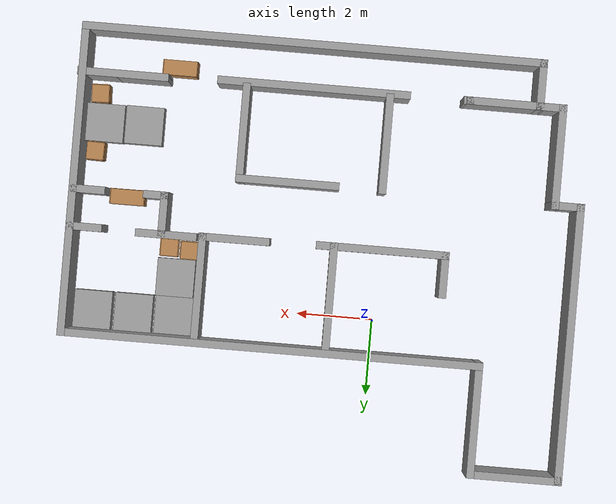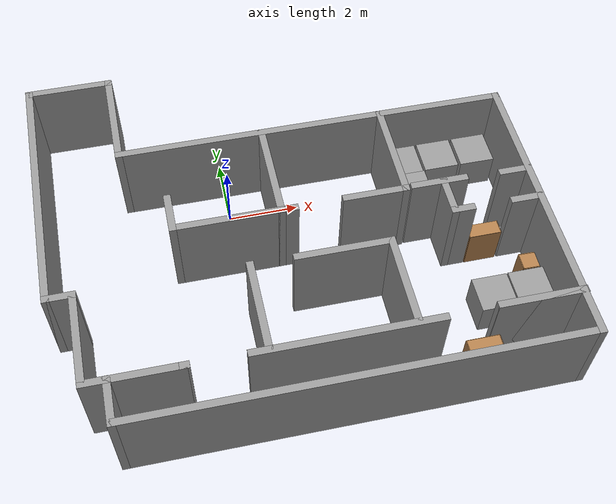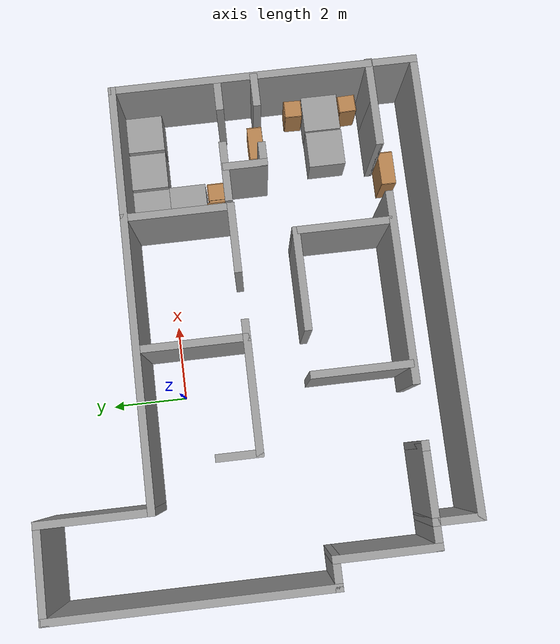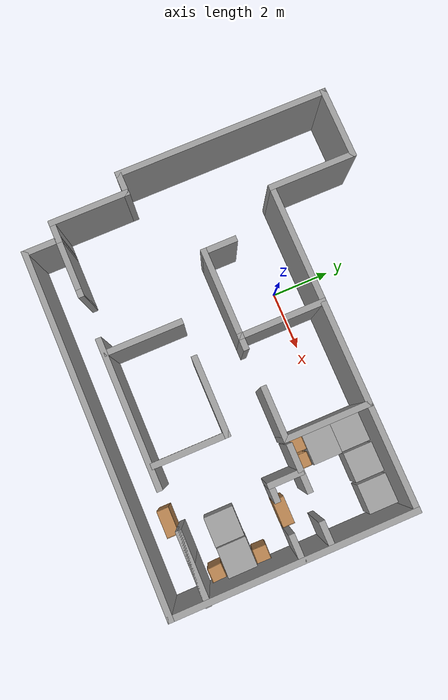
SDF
<sdf version="1.4">
 <world name="default">
  <model name="roy1_0">
   <link name="Wall_14">
    <collision name="Wall_14_Collision">
     <geometry><box><size>7.30611 0.2 2.5</size></box></geometry>
     <pose>0 0 1.25 0 -0 0</pose>
    </collision>
    <visual name="Wall_14_Visual">
     <pose>0 0 1.25 0 -0 0</pose>
     <geometry><box><size>7.30611 0.2 2.5</size></box></geometry>
     <material>
      <script><uri>file://media/materials/scripts/gazebo.material</uri><name>Gazebo/Grey</name></script>
     </material>
    </visual>
    <velocity_decay><linear>0</linear><angular>0</angular></velocity_decay>
    <pose>-11.6774 0.500575 0 0 0 -1.5708</pose>
   </link>
   <link name="Wall_15">
    <collision name="Wall_15_Collision">
     <geometry><box><size>0.869322 0.2 2.5</size></box></geometry>
     <pose>0 0 1.25 0 -0 0</pose>
    </collision>
    <visual name="Wall_15_Visual">
     <pose>0 0 1.25 0 -0 0</pose>
     <geometry><box><size>0.869322 0.2 2.5</size></box></geometry>
     <material>
      <script><uri>file://media/materials/scripts/gazebo.material</uri><name>Gazebo/Grey</name></script>
     </material>
    </visual>
    <velocity_decay><linear>0</linear><angular>0</angular></velocity_decay>
    <pose>-11.3432 -3.05248 0 0 -0 0</pose>
   </link>
   <link name="Wall_16">
    <collision name="Wall_16_Collision">
     <geometry><box><size>2.73287 0.2 2.5</size></box></geometry>
     <pose>0 0 1.25 0 -0 0</pose>
    </collision>
    <visual name="Wall_16_Visual">
     <pose>0 0 1.25 0 -0 0</pose>
     <geometry><box><size>2.73287 0.2 2.5</size></box></geometry>
     <material>
      <script><uri>file://media/materials/scripts/gazebo.material</uri><name>Gazebo/Grey</name></script>
     </material>
    </visual>
    <velocity_decay><linear>0</linear><angular>0</angular></velocity_decay>
    <pose>-11.009 -4.31891 0 0 0 -1.5708</pose>
   </link>
   <link name="Wall_17">
    <collision name="Wall_17_Collision">
     <geometry><box><size>0.798039 0.2 2.5</size></box></geometry>
     <pose>0 0 1.25 0 -0 0</pose>
    </collision>
    <visual name="Wall_17_Visual">
     <pose>0 0 1.25 0 -0 0</pose>
     <geometry><box><size>0.798039 0.2 2.5</size></box></geometry>
     <material>
      <script><uri>file://media/materials/scripts/gazebo.material</uri><name>Gazebo/Grey</name></script>
     </material>
    </visual>
    <velocity_decay><linear>0</linear><angular>0</angular></velocity_decay>
    <pose>-10.71 -5.58535 0 0 -0 0</pose>
   </link>
   <link name="Wall_18">
    <collision name="Wall_18_Collision">
     <geometry><box><size>1.32572 0.2 2.5</size></box></geometry>
     <pose>0 0 1.25 0 -0 0</pose>
    </collision>
    <visual name="Wall_18_Visual">
     <pose>0 0 1.25 0 -0 0</pose>
     <geometry><box><size>1.32572 0.2 2.5</size></box></geometry>
     <material>
      <script><uri>file://media/materials/scripts/gazebo.material</uri><name>Gazebo/Grey</name></script>
     </material>
    </visual>
    <velocity_decay><linear>0</linear><angular>0</angular></velocity_decay>
    <pose>-10.411 -6.14821 0 0 0 -1.5708</pose>
   </link>
   <link name="Wall_19">
    <collision name="Wall_19_Collision">
     <geometry><box><size>12.1261 0.2 2.5</size></box></geometry>
     <pose>0 0 1.25 0 -0 0</pose>
    </collision>
    <visual name="Wall_19_Visual">
     <pose>0 0 1.25 0 -0 0</pose>
     <geometry><box><size>12.1261 0.2 2.5</size></box></geometry>
     <material>
      <script><uri>file://media/materials/scripts/gazebo.material</uri><name>Gazebo/Grey</name></script>
     </material>
    </visual>
    <velocity_decay><linear>0</linear><angular>0</angular></velocity_decay>
    <pose>-4.44816 -6.71107 0 0 -0 0</pose>
   </link>
   <link name="Wall_20">
    <collision name="Wall_20_Collision">
     <geometry><box><size>8.18558 0.2 2.5</size></box></geometry>
     <pose>0 0 1.25 0 -0 0</pose>
    </collision>
    <visual name="Wall_20_Visual">
     <pose>0 0 1.25 0 -0 0</pose>
     <geometry><box><size>8.18558 0.2 2.5</size></box></geometry>
     <material>
      <script><uri>file://media/materials/scripts/gazebo.material</uri><name>Gazebo/Grey</name></script>
     </material>
    </visual>
    <velocity_decay><linear>0</linear><angular>0</angular></velocity_decay>
    <pose>1.51464 -2.71828 0 0 -0 1.5708</pose>
   </link>
   <link name="Wall_21">
    <collision name="Wall_21_Collision">
     <geometry><box><size>11.1059 0.2 2.5</size></box></geometry>
     <pose>0 0 1.25 0 -0 0</pose>
    </collision>
    <visual name="Wall_21_Visual">
     <pose>0 0 1.25 0 -0 0</pose>
     <geometry><box><size>11.1059 0.2 2.5</size></box></geometry>
     <material>
      <script><uri>file://media/materials/scripts/gazebo.material</uri><name>Gazebo/Grey</name></script>
     </material>
    </visual>
    <velocity_decay><linear>0</linear><angular>0</angular></velocity_decay>
    <pose>-3.93807 1.27451 0 0 -0 3.14159</pose>
   </link>
   <link name="Wall_22">
    <collision name="Wall_22_Collision">
     <geometry><box><size>3.0143 0.2 2.5</size></box></geometry>
     <pose>0 0 1.25 0 -0 0</pose>
    </collision>
    <visual name="Wall_22_Visual">
     <pose>0 0 1.25 0 -0 0</pose>
     <geometry><box><size>3.0143 0.2 2.5</size></box></geometry>
     <material>
      <script><uri>file://media/materials/scripts/gazebo.material</uri><name>Gazebo/Grey</name></script>
     </material>
    </visual>
    <velocity_decay><linear>0</linear><angular>0</angular></velocity_decay>
    <pose>-9.39078 2.68166 0 0 -0 1.5708</pose>
   </link>
   <link name="Wall_23">
    <collision name="Wall_23_Collision">
     <geometry><box><size>2.48662 0.2 2.5</size></box></geometry>
     <pose>0 0 1.25 0 -0 0</pose>
    </collision>
    <visual name="Wall_23_Visual">
     <pose>0 0 1.25 0 -0 0</pose>
     <geometry><box><size>2.48662 0.2 2.5</size></box></geometry>
     <material>
      <script><uri>file://media/materials/scripts/gazebo.material</uri><name>Gazebo/Grey</name></script>
     </material>
    </visual>
    <velocity_decay><linear>0</linear><angular>0</angular></velocity_decay>
    <pose>-10.5341 4.08881 0 0 -0 3.14159</pose>
   </link>
   <link name="Wall_24">
    <collision name="Wall_24_Collision">
     <geometry><box><size>0.235179 0.2 2.5</size></box></geometry>
     <pose>0 0 1.25 0 -0 0</pose>
    </collision>
    <visual name="Wall_24_Visual">
     <pose>0 0 1.25 0 -0 0</pose>
     <geometry><box><size>0.235179 0.2 2.5</size></box></geometry>
     <material>
      <script><uri>file://media/materials/scripts/gazebo.material</uri><name>Gazebo/Grey</name></script>
     </material>
    </visual>
    <velocity_decay><linear>0</linear><angular>0</angular></velocity_decay>
    <pose>-11.6774 4.07122 0 0 0 -1.5708</pose>
   </link>
   <link name="Wall_26">
    <collision name="Wall_26_Collision">
     <geometry><box><size>2.98371 0.2 2.5</size></box></geometry>
     <pose>0 0 1.25 0 -0 0</pose>
    </collision>
    <visual name="Wall_26_Visual">
     <pose>0 0 1.25 0 -0 0</pose>
     <geometry><box><size>2.98371 0.2 2.5</size></box></geometry>
     <material>
      <script><uri>file://media/materials/scripts/gazebo.material</uri><name>Gazebo/Grey</name></script>
     </material>
    </visual>
    <velocity_decay><linear>0</linear><angular>0</angular></velocity_decay>
    <pose>-5.37546 -0.128198 0 0 0 -1.5708</pose>
   </link>
   <link name="Wall_27">
    <collision name="Wall_27_Collision">
     <geometry><box><size>3.10607 0.2 2.5</size></box></geometry>
     <pose>0 0 1.25 0 -0 0</pose>
    </collision>
    <visual name="Wall_27_Visual">
     <pose>0 0 1.25 0 -0 0</pose>
     <geometry><box><size>3.10607 0.2 2.5</size></box></geometry>
     <material>
      <script><uri>file://media/materials/scripts/gazebo.material</uri><name>Gazebo/Grey</name></script>
     </material>
    </visual>
    <velocity_decay><linear>0</linear><angular>0</angular></velocity_decay>
    <pose>-6.8285 -1.52005 0 0 -0 3.14159</pose>
   </link>
   <link name="Wall_28">
    <collision name="Wall_28_Collision">
     <geometry><box><size>1.20948 0.2 2.5</size></box></geometry>
     <pose>0 0 1.25 0 -0 0</pose>
    </collision>
    <visual name="Wall_28_Visual">
     <pose>0 0 1.25 0 -0 0</pose>
     <geometry><box><size>1.20948 0.2 2.5</size></box></geometry>
     <material>
      <script><uri>file://media/materials/scripts/gazebo.material</uri><name>Gazebo/Grey</name></script>
     </material>
    </visual>
    <velocity_decay><linear>0</linear><angular>0</angular></velocity_decay>
    <pose>-8.28153 -1.01531 0 0 -0 1.5708</pose>
   </link>
   <link name="Wall_30">
    <collision name="Wall_30_Collision">
     <geometry><box><size>0.505902 0.2 2.5</size></box></geometry>
     <pose>0 0 1.25 0 -0 0</pose>
    </collision>
    <visual name="Wall_30_Visual">
     <pose>0 0 1.25 0 -0 0</pose>
     <geometry><box><size>0.505902 0.2 2.5</size></box></geometry>
     <material>
      <script><uri>file://media/materials/scripts/gazebo.material</uri><name>Gazebo/Grey</name></script>
     </material>
    </visual>
    <velocity_decay><linear>0</linear><angular>0</angular></velocity_decay>
    <pose>-5.16133 -1.52005 0 0 -0 0</pose>
   </link>
   <link name="Wall_32">
    <collision name="Wall_32_Collision">
     <geometry><box><size>2.95329 0.2 2.5</size></box></geometry>
     <pose>0 0 1.25 0 -0 0</pose>
    </collision>
    <visual name="Wall_32_Visual">
     <pose>0 0 1.25 0 -0 0</pose>
     <geometry><box><size>2.95329 0.2 2.5</size></box></geometry>
     <material>
      <script><uri>file://media/materials/scripts/gazebo.material</uri><name>Gazebo/Grey</name></script>
     </material>
    </visual>
    <velocity_decay><linear>0</linear><angular>0</angular></velocity_decay>
    <pose>-1.94935 -0.112818 0 0 0 -1.5708</pose>
   </link>
   <link name="Wall_33">
    <collision name="Wall_33_Collision">
     <geometry><box><size>1.85187 0.2 2.5</size></box></geometry>
     <pose>0 0 1.25 0 -0 0</pose>
    </collision>
    <visual name="Wall_33_Visual">
     <pose>0 0 1.25 0 -0 0</pose>
     <geometry><box><size>1.85187 0.2 2.5</size></box></geometry>
     <material>
      <script><uri>file://media/materials/scripts/gazebo.material</uri><name>Gazebo/Grey</name></script>
     </material>
    </visual>
    <velocity_decay><linear>0</linear><angular>0</angular></velocity_decay>
    <pose>-2.77529 -1.48946 0 0 -0 3.14159</pose>
   </link>
   <link name="Wall_38">
    <collision name="Wall_38_Collision">
     <geometry><box><size>1.6 0.2 2.5</size></box></geometry>
     <pose>0 0 1.25 0 -0 0</pose>
    </collision>
    <visual name="Wall_38_Visual">
     <pose>0 0 1.25 0 -0 0</pose>
     <geometry><box><size>1.6 0.2 2.5</size></box></geometry>
     <material>
      <script><uri>file://media/materials/scripts/gazebo.material</uri><name>Gazebo/Grey</name></script>
     </material>
    </visual>
    <velocity_decay><linear>0</linear><angular>0</angular></velocity_decay>
    <pose>-1.00106 -1.45887 0 0 -0 0</pose>
   </link>
   <link name="Wall_40">
    <collision name="Wall_40_Collision">
     <geometry><box><size>0.934165 0.2 2.5</size></box></geometry>
     <pose>0 0 1.25 0 -0 0</pose>
    </collision>
    <visual name="Wall_40_Visual">
     <pose>0 0 1.25 0 -0 0</pose>
     <geometry><box><size>0.934165 0.2 2.5</size></box></geometry>
     <material>
      <script><uri>file://media/materials/scripts/gazebo.material</uri><name>Gazebo/Grey</name></script>
     </material>
    </visual>
    <velocity_decay><linear>0</linear><angular>0</angular></velocity_decay>
    <pose>1.14026 -1.48946 0 0 -0 0</pose>
   </link>
   <link name="Wall_42">
    <collision name="Wall_42_Collision">
     <geometry><box><size>1.17889 0.2 2.5</size></box></geometry>
     <pose>0 0 1.25 0 -0 0</pose>
    </collision>
    <visual name="Wall_42_Visual">
     <pose>0 0 1.25 0 -0 0</pose>
     <geometry><box><size>1.17889 0.2 2.5</size></box></geometry>
     <material>
      <script><uri>file://media/materials/scripts/gazebo.material</uri><name>Gazebo/Grey</name></script>
     </material>
    </visual>
    <velocity_decay><linear>0</linear><angular>0</angular></velocity_decay>
    <pose>-0.878696 -1.97891 0 0 0 -1.5708</pose>
   </link>
   <link name="Wall_43">
    <collision name="Wall_43_Collision">
     <geometry><box><size>0.658853 0.2 2.5</size></box></geometry>
     <pose>0 0 1.25 0 -0 0</pose>
    </collision>
    <visual name="Wall_43_Visual">
     <pose>0 0 1.25 0 -0 0</pose>
     <geometry><box><size>0.658853 0.2 2.5</size></box></geometry>
     <material>
      <script><uri>file://media/materials/scripts/gazebo.material</uri><name>Gazebo/Grey</name></script>
     </material>
    </visual>
    <velocity_decay><linear>0</linear><angular>0</angular></velocity_decay>
    <pose>-0.64927 -2.46835 0 0 -0 0</pose>
   </link>
   <link name="Wall_45">
    <collision name="Wall_45_Collision">
     <geometry><box><size>0.903575 0.2 2.5</size></box></geometry>
     <pose>0 0 1.25 0 -0 0</pose>
    </collision>
    <visual name="Wall_45_Visual">
     <pose>0 0 1.25 0 -0 0</pose>
     <geometry><box><size>0.903575 0.2 2.5</size></box></geometry>
     <material>
      <script><uri>file://media/materials/scripts/gazebo.material</uri><name>Gazebo/Grey</name></script>
     </material>
    </visual>
    <velocity_decay><linear>0</linear><angular>0</angular></velocity_decay>
    <pose>1.12496 -2.46835 0 0 -0 0</pose>
   </link>
   <link name="Wall_47">
    <collision name="Wall_47_Collision">
     <geometry><box><size>2.70858 0.2 2.5</size></box></geometry>
     <pose>0 0 1.25 0 -0 0</pose>
    </collision>
    <visual name="Wall_47_Visual">
     <pose>0 0 1.25 0 -0 0</pose>
     <geometry><box><size>2.70858 0.2 2.5</size></box></geometry>
     <material>
      <script><uri>file://media/materials/scripts/gazebo.material</uri><name>Gazebo/Grey</name></script>
     </material>
    </visual>
    <velocity_decay><linear>0</linear><angular>0</angular></velocity_decay>
    <pose>-4.02958 -3.08015 0 0 -0 0</pose>
   </link>
   <link name="Wall_48">
    <collision name="Wall_48_Collision">
     <geometry><box><size>2.58604 0.2 2.5</size></box></geometry>
     <pose>0 0 1.25 0 -0 0</pose>
    </collision>
    <visual name="Wall_48_Visual">
     <pose>0 0 1.25 0 -0 0</pose>
     <geometry><box><size>2.58604 0.2 2.5</size></box></geometry>
     <material>
      <script><uri>file://media/materials/scripts/gazebo.material</uri><name>Gazebo/Grey</name></script>
     </material>
    </visual>
    <velocity_decay><linear>0</linear><angular>0</angular></velocity_decay>
    <pose>-2.77529 -4.27317 0 0 0 -1.5708</pose>
   </link>
   <link name="Wall_50">
    <collision name="Wall_50_Collision">
     <geometry><box><size>2.61663 0.2 2.5</size></box></geometry>
     <pose>0 0 1.25 0 -0 0</pose>
    </collision>
    <visual name="Wall_50_Visual">
     <pose>0 0 1.25 0 -0 0</pose>
     <geometry><box><size>2.61663 0.2 2.5</size></box></geometry>
     <material>
      <script><uri>file://media/materials/scripts/gazebo.material</uri><name>Gazebo/Grey</name></script>
     </material>
    </visual>
    <velocity_decay><linear>0</linear><angular>0</angular></velocity_decay>
    <pose>-6.5073 -4.28847 0 0 0 -1.5708</pose>
   </link>
   <link name="Wall_54">
    <collision name="Wall_54_Collision">
     <geometry><box><size>2.00482 0.2 2.5</size></box></geometry>
     <pose>0 0 1.25 0 -0 0</pose>
    </collision>
    <visual name="Wall_54_Visual">
     <pose>0 0 1.25 0 -0 0</pose>
     <geometry><box><size>2.00482 0.2 2.5</size></box></geometry>
     <material>
      <script><uri>file://media/materials/scripts/gazebo.material</uri><name>Gazebo/Grey</name></script>
     </material>
    </visual>
    <velocity_decay><linear>0</linear><angular>0</angular></velocity_decay>
    <pose>-9.48985 -5.58855 0 0 -0 0</pose>
   </link>
   <link name="Wall_55">
    <collision name="Wall_55_Collision">
     <geometry><box><size>0.26118 0.2 2.5</size></box></geometry>
     <pose>0 0 1.25 0 -0 0</pose>
    </collision>
    <visual name="Wall_55_Visual">
     <pose>0 0 1.25 0 -0 0</pose>
     <geometry><box><size>0.26118 0.2 2.5</size></box></geometry>
     <material>
      <script><uri>file://media/materials/scripts/gazebo.material</uri><name>Gazebo/Grey</name></script>
     </material>
    </visual>
    <velocity_decay><linear>0</linear><angular>0</angular></velocity_decay>
    <pose>-8.55684 -5.58855 0 0 -0 0</pose>
   </link>
   <link name="Wall_57">
    <collision name="Wall_57_Collision">
     <geometry><box><size>5.03326 0.2 2.5</size></box></geometry>
     <pose>0 0 1.25 0 -0 0</pose>
    </collision>
    <visual name="Wall_57_Visual">
     <pose>0 0 1.25 0 -0 0</pose>
     <geometry><box><size>5.03326 0.2 2.5</size></box></geometry>
     <material>
      <script><uri>file://media/materials/scripts/gazebo.material</uri><name>Gazebo/Grey</name></script>
     </material>
    </visual>
    <velocity_decay><linear>0</linear><angular>0</angular></velocity_decay>
    <pose>-4.51893 -5.58855 0 0 -0 0</pose>
   </link>
   <link name="Wall_62">
    <collision name="Wall_62_Collision">
     <geometry><box><size>2.37191 0.2 2.5</size></box></geometry>
     <pose>0 0 1.25 0 -0 0</pose>
    </collision>
    <visual name="Wall_62_Visual">
     <pose>0 0 1.25 0 -0 0</pose>
     <geometry><box><size>2.37191 0.2 2.5</size></box></geometry>
     <material>
      <script><uri>file://media/materials/scripts/gazebo.material</uri><name>Gazebo/Grey</name></script>
     </material>
    </visual>
    <velocity_decay><linear>0</linear><angular>0</angular></velocity_decay>
    <pose>0.451979 -5.52737 0 0 -0 0</pose>
   </link>
   <link name="Wall_63">
    <collision name="Wall_63_Collision">
     <geometry><box><size>2.37191 0.2 2.5</size></box></geometry>
     <pose>0 0 1.25 0 -0 0</pose>
    </collision>
    <visual name="Wall_63_Visual">
     <pose>0 0 1.25 0 -0 0</pose>
     <geometry><box><size>2.37191 0.2 2.5</size></box></geometry>
     <material>
      <script><uri>file://media/materials/scripts/gazebo.material</uri><name>Gazebo/Grey</name></script>
     </material>
    </visual>
    <velocity_decay><linear>0</linear><angular>0</angular></velocity_decay>
    <pose>0.451979 -5.52737 0 0 -0 3.14159</pose>
   </link>
   <static>1</static>
   <pose>6.55073 -0.34156 0 0 -0 0</pose>
  </model>
  <model name="unit_box_9">
   <pose>6.31337 0.31804 0.5 0 -0 -1e-06</pose>
   <link name="link">
    <inertial>
     <mass>1</mass>
     <inertia><ixx>1</ixx><ixy>0</ixy><ixz>0</ixz><iyy>1</iyy><iyz>0</iyz><izz>1</izz></inertia>
    </inertial>
    <collision name="collision"><geometry><box><size>1 1 1</size></box></geometry></collision>
    <visual name="visual">
     <geometry><box><size>1 1 1</size></box></geometry>
     <material>
      <script><uri>file://media/materials/scripts/gazebo.material</uri><name>Gazebo/Grey</name></script>
     </material>
    </visual>
    <velocity_decay><linear>0</linear><angular>0</angular></velocity_decay>
   </link>
   <static>0</static>
  </model>
  <model name="unit_box_10">
   <pose>7.39302 0.318011 0.5 0 -0 -1e-06</pose>
   <link name="link">
    <inertial>
     <mass>1</mass>
     <inertia><ixx>1</ixx><ixy>0</ixy><ixz>0</ixz><iyy>1</iyy><iyz>0</iyz><izz>1</izz></inertia>
    </inertial>
    <collision name="collision"><geometry><box><size>1 1 1</size></box></geometry></collision>
    <visual name="visual">
     <geometry><box><size>1 1 1</size></box></geometry>
     <material>
      <script><uri>file://media/materials/scripts/gazebo.material</uri><name>Gazebo/Grey</name></script>
     </material>
    </visual>
    <velocity_decay><linear>0</linear><angular>0</angular></velocity_decay>
   </link>
   <static>0</static>
  </model>
  <model name="unit_box_11">
   <pose>5.24591 0.307406 0.5 0 -0 0.001323</pose>
   <link name="link">
    <inertial>
     <mass>1</mass>
     <inertia><ixx>1</ixx><ixy>0</ixy><ixz>0</ixz><iyy>1</iyy><iyz>0</iyz><izz>1</izz></inertia>
    </inertial>
    <collision name="collision"><geometry><box><size>1 1 1</size></box></geometry></collision>
    <visual name="visual">
     <geometry><box><size>1 1 1</size></box></geometry>
     <material>
      <script><uri>file://media/materials/scripts/gazebo.material</uri><name>Gazebo/Grey</name></script>
     </material>
    </visual>
    <velocity_decay><linear>0</linear><angular>0</angular></velocity_decay>
   </link>
   <static>0</static>
  </model>
  <model name="cabinet_1">
   <static>1</static>
   <link name="cabinet_bottom_plate">
    <inertial>
     <pose>0 0 -1 0 -0 0</pose>
     <inertia><ixx>2.05</ixx><ixy>0</ixy><ixz>0</ixz><iyy>2.05</iyy><iyz>0</iyz><izz>2.05</izz></inertia>
     <mass>25</mass>
    </inertial>
    <collision name="cabinet_bottom_plate_geom">
     <pose>0 0 0.01 0 -0 0</pose>
     <geometry><box><size>0.45 0.45 0.02</size></box></geometry>
    </collision>
    <visual name="cabinet_bottom_plate_geom_visual">
     <pose>0 0 0.01 0 -0 0</pose>
     <geometry><box><size>0.45 0.45 0.02</size></box></geometry>
     <material>
      <script><uri>file://media/materials/scripts/gazebo.material</uri><name>Gazebo/Wood</name></script>
     </material>
    </visual>
    <collision name="cabinet_bottom_plate_geom_cabinet_back_plate">
     <pose>0.235 0 0.51 0 -0 0</pose>
     <geometry><box><size>0.02 0.45 1.02</size></box></geometry>
    </collision>
    <visual name="cabinet_bottom_plate_geom_cabinet_back_plate_visual">
     <pose>0.235 0 0.51 0 -0 0</pose>
     <geometry><box><size>0.02 0.45 1.02</size></box></geometry>
     <material>
      <script><uri>file://media/materials/scripts/gazebo.material</uri><name>Gazebo/Wood</name></script>
     </material>
    </visual>
    <collision name="cabinet_bottom_plate_geom_cabinet_left_plate">
     <pose>0 0.235 0.51 0 -0 0</pose>
     <geometry><box><size>0.45 0.02 1.02</size></box></geometry>
    </collision>
    <visual name="cabinet_bottom_plate_geom_cabinet_left_plate_visual">
     <pose>0 0.235 0.51 0 -0 0</pose>
     <geometry><box><size>0.45 0.02 1.02</size></box></geometry>
     <material>
      <script><uri>file://media/materials/scripts/gazebo.material</uri><name>Gazebo/Wood</name></script>
     </material>
    </visual>
    <collision name="cabinet_bottom_plate_geom_cabinet_middle_plate">
     <pose>0 0 0.51 0 -0 0</pose>
     <geometry><box><size>0.45 0.45 0.02</size></box></geometry>
    </collision>
    <visual name="cabinet_bottom_plate_geom_cabinet_middle_plate_visual">
     <pose>0 0 0.51 0 -0 0</pose>
     <geometry><box><size>0.45 0.45 0.02</size></box></geometry>
     <material>
      <script><uri>file://media/materials/scripts/gazebo.material</uri><name>Gazebo/Wood</name></script>
     </material>
    </visual>
    <collision name="cabinet_bottom_plate_geom_cabinet_right_plate">
     <pose>0 -0.235 0.51 0 -0 0</pose>
     <geometry><box><size>0.45 0.02 1.02</size></box></geometry>
    </collision>
    <visual name="cabinet_bottom_plate_geom_cabinet_right_plate_visual">
     <pose>0 -0.235 0.51 0 -0 0</pose>
     <geometry><box><size>0.45 0.02 1.02</size></box></geometry>
     <material>
      <script><uri>file://media/materials/scripts/gazebo.material</uri><name>Gazebo/Wood</name></script>
     </material>
    </visual>
    <collision name="cabinet_bottom_plate_geom_cabinet_top_plate">
     <pose>0 0 1.01 0 -0 0</pose>
     <geometry><box><size>0.45 0.45 0.02</size></box></geometry>
    </collision>
    <visual name="cabinet_bottom_plate_geom_cabinet_top_plate_visual">
     <pose>0 0 1.01 0 -0 0</pose>
     <geometry><box><size>0.45 0.45 0.02</size></box></geometry>
     <material>
      <script><uri>file://media/materials/scripts/gazebo.material</uri><name>Gazebo/Wood</name></script>
     </material>
    </visual>
    <velocity_decay><linear>0</linear><angular>0</angular></velocity_decay>
   </link>
   <pose>7.65336 -5.38373 -0 0 0 -3.10739</pose>
  </model>
  <model name="cabinet_2">
   <static>1</static>
   <link name="cabinet_bottom_plate">
    <inertial>
     <pose>0 0 -1 0 -0 0</pose>
     <inertia><ixx>2.05</ixx><ixy>0</ixy><ixz>0</ixz><iyy>2.05</iyy><iyz>0</iyz><izz>2.05</izz></inertia>
     <mass>25</mass>
    </inertial>
    <collision name="cabinet_bottom_plate_geom">
     <pose>0 0 0.01 0 -0 0</pose>
     <geometry><box><size>0.45 0.45 0.02</size></box></geometry>
    </collision>
    <visual name="cabinet_bottom_plate_geom_visual">
     <pose>0 0 0.01 0 -0 0</pose>
     <geometry><box><size>0.45 0.45 0.02</size></box></geometry>
     <material>
      <script><uri>file://media/materials/scripts/gazebo.material</uri><name>Gazebo/Wood</name></script>
     </material>
    </visual>
    <collision name="cabinet_bottom_plate_geom_cabinet_back_plate">
     <pose>0.235 0 0.51 0 -0 0</pose>
     <geometry><box><size>0.02 0.45 1.02</size></box></geometry>
    </collision>
    <visual name="cabinet_bottom_plate_geom_cabinet_back_plate_visual">
     <pose>0.235 0 0.51 0 -0 0</pose>
     <geometry><box><size>0.02 0.45 1.02</size></box></geometry>
     <material>
      <script><uri>file://media/materials/scripts/gazebo.material</uri><name>Gazebo/Wood</name></script>
     </material>
    </visual>
    <collision name="cabinet_bottom_plate_geom_cabinet_left_plate">
     <pose>0 0.235 0.51 0 -0 0</pose>
     <geometry><box><size>0.45 0.02 1.02</size></box></geometry>
    </collision>
    <visual name="cabinet_bottom_plate_geom_cabinet_left_plate_visual">
     <pose>0 0.235 0.51 0 -0 0</pose>
     <geometry><box><size>0.45 0.02 1.02</size></box></geometry>
     <material>
      <script><uri>file://media/materials/scripts/gazebo.material</uri><name>Gazebo/Wood</name></script>
     </material>
    </visual>
    <collision name="cabinet_bottom_plate_geom_cabinet_middle_plate">
     <pose>0 0 0.51 0 -0 0</pose>
     <geometry><box><size>0.45 0.45 0.02</size></box></geometry>
    </collision>
    <visual name="cabinet_bottom_plate_geom_cabinet_middle_plate_visual">
     <pose>0 0 0.51 0 -0 0</pose>
     <geometry><box><size>0.45 0.45 0.02</size></box></geometry>
     <material>
      <script><uri>file://media/materials/scripts/gazebo.material</uri><name>Gazebo/Wood</name></script>
     </material>
    </visual>
    <collision name="cabinet_bottom_plate_geom_cabinet_right_plate">
     <pose>0 -0.235 0.51 0 -0 0</pose>
     <geometry><box><size>0.45 0.02 1.02</size></box></geometry>
    </collision>
    <visual name="cabinet_bottom_plate_geom_cabinet_right_plate_visual">
     <pose>0 -0.235 0.51 0 -0 0</pose>
     <geometry><box><size>0.45 0.02 1.02</size></box></geometry>
     <material>
      <script><uri>file://media/materials/scripts/gazebo.material</uri><name>Gazebo/Wood</name></script>
     </material>
    </visual>
    <collision name="cabinet_bottom_plate_geom_cabinet_top_plate">
     <pose>0 0 1.01 0 -0 0</pose>
     <geometry><box><size>0.45 0.45 0.02</size></box></geometry>
    </collision>
    <visual name="cabinet_bottom_plate_geom_cabinet_top_plate_visual">
     <pose>0 0 1.01 0 -0 0</pose>
     <geometry><box><size>0.45 0.45 0.02</size></box></geometry>
     <material>
      <script><uri>file://media/materials/scripts/gazebo.material</uri><name>Gazebo/Wood</name></script>
     </material>
    </visual>
    <velocity_decay><linear>0</linear><angular>0</angular></velocity_decay>
   </link>
   <pose>7.66914 -3.86328 0 0 -0 3.12247</pose>
  </model>
  <model name="unit_box_17">
   <pose>5.27691 -0.692683 0.5 0 -0 0.001235</pose>
   <link name="link">
    <inertial>
     <mass>1</mass>
     <inertia><ixx>1</ixx><ixy>0</ixy><ixz>0</ixz><iyy>1</iyy><iyz>0</iyz><izz>1</izz></inertia>
    </inertial>
    <collision name="collision"><geometry><box><size>1 1 1</size></box></geometry></collision>
    <visual name="visual">
     <geometry><box><size>1 1 1</size></box></geometry>
     <material>
      <script><uri>file://media/materials/scripts/gazebo.material</uri><name>Gazebo/Grey</name></script>
     </material>
    </visual>
    <velocity_decay><linear>0</linear><angular>0</angular></velocity_decay>
   </link>
   <static>0</static>
  </model>
  <model name="cabinet_5">
   <static>1</static>
   <link name="cabinet_bottom_plate">
    <inertial>
     <pose>0 0 -1 0 -0 0</pose>
     <inertia><ixx>2.05</ixx><ixy>0</ixy><ixz>0</ixz><iyy>2.05</iyy><iyz>0</iyz><izz>2.05</izz></inertia>
     <mass>25</mass>
    </inertial>
    <collision name="cabinet_bottom_plate_geom">
     <pose>0 0 0.01 0 -0 0</pose>
     <geometry><box><size>0.45 0.45 0.02</size></box></geometry>
    </collision>
    <visual name="cabinet_bottom_plate_geom_visual">
     <pose>0 0 0.01 0 -0 0</pose>
     <geometry><box><size>0.45 0.45 0.02</size></box></geometry>
     <material>
      <script><uri>file://media/materials/scripts/gazebo.material</uri><name>Gazebo/Wood</name></script>
     </material>
    </visual>
    <collision name="cabinet_bottom_plate_geom_cabinet_back_plate">
     <pose>0.235 0 0.51 0 -0 0</pose>
     <geometry><box><size>0.02 0.45 1.02</size></box></geometry>
    </collision>
    <visual name="cabinet_bottom_plate_geom_cabinet_back_plate_visual">
     <pose>0.235 0 0.51 0 -0 0</pose>
     <geometry><box><size>0.02 0.45 1.02</size></box></geometry>
     <material>
      <script><uri>file://media/materials/scripts/gazebo.material</uri><name>Gazebo/Wood</name></script>
     </material>
    </visual>
    <collision name="cabinet_bottom_plate_geom_cabinet_left_plate">
     <pose>0 0.235 0.51 0 -0 0</pose>
     <geometry><box><size>0.45 0.02 1.02</size></box></geometry>
    </collision>
    <visual name="cabinet_bottom_plate_geom_cabinet_left_plate_visual">
     <pose>0 0.235 0.51 0 -0 0</pose>
     <geometry><box><size>0.45 0.02 1.02</size></box></geometry>
     <material>
      <script><uri>file://media/materials/scripts/gazebo.material</uri><name>Gazebo/Wood</name></script>
     </material>
    </visual>
    <collision name="cabinet_bottom_plate_geom_cabinet_middle_plate">
     <pose>0 0 0.51 0 -0 0</pose>
     <geometry><box><size>0.45 0.45 0.02</size></box></geometry>
    </collision>
    <visual name="cabinet_bottom_plate_geom_cabinet_middle_plate_visual">
     <pose>0 0 0.51 0 -0 0</pose>
     <geometry><box><size>0.45 0.45 0.02</size></box></geometry>
     <material>
      <script><uri>file://media/materials/scripts/gazebo.material</uri><name>Gazebo/Wood</name></script>
     </material>
    </visual>
    <collision name="cabinet_bottom_plate_geom_cabinet_right_plate">
     <pose>0 -0.235 0.51 0 -0 0</pose>
     <geometry><box><size>0.45 0.02 1.02</size></box></geometry>
    </collision>
    <visual name="cabinet_bottom_plate_geom_cabinet_right_plate_visual">
     <pose>0 -0.235 0.51 0 -0 0</pose>
     <geometry><box><size>0.45 0.02 1.02</size></box></geometry>
     <material>
      <script><uri>file://media/materials/scripts/gazebo.material</uri><name>Gazebo/Wood</name></script>
     </material>
    </visual>
    <collision name="cabinet_bottom_plate_geom_cabinet_top_plate">
     <pose>0 0 1.01 0 -0 0</pose>
     <geometry><box><size>0.45 0.45 0.02</size></box></geometry>
    </collision>
    <visual name="cabinet_bottom_plate_geom_cabinet_top_plate_visual">
     <pose>0 0 1.01 0 -0 0</pose>
     <geometry><box><size>0.45 0.45 0.02</size></box></geometry>
     <material>
      <script><uri>file://media/materials/scripts/gazebo.material</uri><name>Gazebo/Wood</name></script>
     </material>
    </visual>
    <velocity_decay><linear>0</linear><angular>0</angular></velocity_decay>
   </link>
   <pose>4.96795 -1.4383 0 0 -0 0</pose>
  </model>
  <model name="cabinet_7">
   <static>1</static>
   <link name="cabinet_bottom_plate">
    <inertial>
     <pose>0 0 -1 0 -0 0</pose>
     <inertia><ixx>2.05</ixx><ixy>0</ixy><ixz>0</ixz><iyy>2.05</iyy><iyz>0</iyz><izz>2.05</izz></inertia>
     <mass>25</mass>
    </inertial>
    <collision name="cabinet_bottom_plate_geom">
     <pose>0 0 0.01 0 -0 0</pose>
     <geometry><box><size>0.45 0.45 0.02</size></box></geometry>
    </collision>
    <visual name="cabinet_bottom_plate_geom_visual">
     <pose>0 0 0.01 0 -0 0</pose>
     <geometry><box><size>0.45 0.45 0.02</size></box></geometry>
     <material>
      <script><uri>file://media/materials/scripts/gazebo.material</uri><name>Gazebo/Wood</name></script>
     </material>
    </visual>
    <collision name="cabinet_bottom_plate_geom_cabinet_back_plate">
     <pose>0.235 0 0.51 0 -0 0</pose>
     <geometry><box><size>0.02 0.45 1.02</size></box></geometry>
    </collision>
    <visual name="cabinet_bottom_plate_geom_cabinet_back_plate_visual">
     <pose>0.235 0 0.51 0 -0 0</pose>
     <geometry><box><size>0.02 0.45 1.02</size></box></geometry>
     <material>
      <script><uri>file://media/materials/scripts/gazebo.material</uri><name>Gazebo/Wood</name></script>
     </material>
    </visual>
    <collision name="cabinet_bottom_plate_geom_cabinet_left_plate">
     <pose>0 0.235 0.51 0 -0 0</pose>
     <geometry><box><size>0.45 0.02 1.02</size></box></geometry>
    </collision>
    <visual name="cabinet_bottom_plate_geom_cabinet_left_plate_visual">
     <pose>0 0.235 0.51 0 -0 0</pose>
     <geometry><box><size>0.45 0.02 1.02</size></box></geometry>
     <material>
      <script><uri>file://media/materials/scripts/gazebo.material</uri><name>Gazebo/Wood</name></script>
     </material>
    </visual>
    <collision name="cabinet_bottom_plate_geom_cabinet_middle_plate">
     <pose>0 0 0.51 0 -0 0</pose>
     <geometry><box><size>0.45 0.45 0.02</size></box></geometry>
    </collision>
    <visual name="cabinet_bottom_plate_geom_cabinet_middle_plate_visual">
     <pose>0 0 0.51 0 -0 0</pose>
     <geometry><box><size>0.45 0.45 0.02</size></box></geometry>
     <material>
      <script><uri>file://media/materials/scripts/gazebo.material</uri><name>Gazebo/Wood</name></script>
     </material>
    </visual>
    <collision name="cabinet_bottom_plate_geom_cabinet_right_plate">
     <pose>0 -0.235 0.51 0 -0 0</pose>
     <geometry><box><size>0.45 0.02 1.02</size></box></geometry>
    </collision>
    <visual name="cabinet_bottom_plate_geom_cabinet_right_plate_visual">
     <pose>0 -0.235 0.51 0 -0 0</pose>
     <geometry><box><size>0.45 0.02 1.02</size></box></geometry>
     <material>
      <script><uri>file://media/materials/scripts/gazebo.material</uri><name>Gazebo/Wood</name></script>
     </material>
    </visual>
    <collision name="cabinet_bottom_plate_geom_cabinet_top_plate">
     <pose>0 0 1.01 0 -0 0</pose>
     <geometry><box><size>0.45 0.45 0.02</size></box></geometry>
    </collision>
    <visual name="cabinet_bottom_plate_geom_cabinet_top_plate_visual">
     <pose>0 0 1.01 0 -0 0</pose>
     <geometry><box><size>0.45 0.45 0.02</size></box></geometry>
     <material>
      <script><uri>file://media/materials/scripts/gazebo.material</uri><name>Gazebo/Wood</name></script>
     </material>
    </visual>
    <velocity_decay><linear>0</linear><angular>0</angular></velocity_decay>
   </link>
   <pose>5.50358 -1.48365 0 0 -0 0</pose>
  </model>
  <model name="unit_box_21">
   <pose>6.42945 -4.63164 0.5 0 -0 0</pose>
   <link name="link">
    <inertial>
     <mass>1</mass>
     <inertia><ixx>1</ixx><ixy>0</ixy><ixz>0</ixz><iyy>1</iyy><iyz>0</iyz><izz>1</izz></inertia>
    </inertial>
    <collision name="collision"><geometry><box><size>1 1 1</size></box></geometry></collision>
    <visual name="visual">
     <geometry><box><size>1 1 1</size></box></geometry>
     <material>
      <script><uri>file://media/materials/scripts/gazebo.material</uri><name>Gazebo/Grey</name></script>
     </material>
    </visual>
    <velocity_decay><linear>0</linear><angular>0</angular></velocity_decay>
   </link>
   <static>0</static>
  </model>
  <model name="unit_box_22">
   <pose>7.46498 -4.62077 0.5 0 -0 2e-06</pose>
   <link name="link">
    <inertial>
     <mass>1</mass>
     <inertia><ixx>1</ixx><ixy>0</ixy><ixz>0</ixz><iyy>1</iyy><iyz>0</iyz><izz>1</izz></inertia>
    </inertial>
    <collision name="collision"><geometry><box><size>1 1 1</size></box></geometry></collision>
    <visual name="visual">
     <geometry><box><size>1 1 1</size></box></geometry>
     <material>
      <script><uri>file://media/materials/scripts/gazebo.material</uri><name>Gazebo/Grey</name></script>
     </material>
    </visual>
    <velocity_decay><linear>0</linear><angular>0</angular></velocity_decay>
   </link>
   <static>0</static>
  </model>
  <model name="bookshelf">
   <static>1</static>
   <link name="link">
    <inertial><mass>1</mass></inertial>
    <collision name="back">
     <pose>0 0.005 0.6 0 -0 0</pose>
     <geometry><box><size>0.9 0.01 1.2</size></box></geometry>
    </collision>
    <visual name="visual1">
     <pose>0 0.005 0.6 0 -0 0</pose>
     <geometry><box><size>0.9 0.01 1.2</size></box></geometry>
     <material>
      <script><uri>file://media/materials/scripts/gazebo.material</uri><name>Gazebo/Wood</name></script>
     </material>
    </visual>
    <collision name="left_side">
     <pose>0.45 -0.195 0.6 0 -0 0</pose>
     <geometry><box><size>0.02 0.4 1.2</size></box></geometry>
    </collision>
    <visual name="visual2">
     <pose>0.45 -0.195 0.6 0 -0 0</pose>
     <geometry><box><size>0.02 0.4 1.2</size></box></geometry>
     <material>
      <script><uri>file://media/materials/scripts/gazebo.material</uri><name>Gazebo/Wood</name></script>
     </material>
    </visual>
    <collision name="right_side">
     <pose>-0.45 -0.195 0.6 0 -0 0</pose>
     <geometry><box><size>0.02 0.4 1.2</size></box></geometry>
    </collision>
    <visual name="visual3">
     <pose>-0.45 -0.195 0.6 0 -0 0</pose>
     <geometry><box><size>0.02 0.4 1.2</size></box></geometry>
     <material>
      <script><uri>file://media/materials/scripts/gazebo.material</uri><name>Gazebo/Wood</name></script>
     </material>
    </visual>
    <collision name="bottom">
     <pose>0 -0.195 0.03 0 -0 0</pose>
     <geometry><box><size>0.88 0.4 0.06</size></box></geometry>
    </collision>
    <visual name="visual4">
     <pose>0 -0.195 0.03 0 -0 0</pose>
     <geometry><box><size>0.88 0.4 0.06</size></box></geometry>
     <material>
      <script><uri>file://media/materials/scripts/gazebo.material</uri><name>Gazebo/Wood</name></script>
     </material>
    </visual>
    <collision name="top">
     <pose>0 -0.195 1.19 0 -0 0</pose>
     <geometry><box><size>0.88 0.4 0.02</size></box></geometry>
    </collision>
    <visual name="visual5">
     <pose>0 -0.195 1.19 0 -0 0</pose>
     <geometry><box><size>0.88 0.4 0.02</size></box></geometry>
     <material>
      <script><uri>file://media/materials/scripts/gazebo.material</uri><name>Gazebo/Wood</name></script>
     </material>
    </visual>
    <collision name="low_shelf">
     <pose>0 -0.195 0.43 0 -0 0</pose>
     <geometry><box><size>0.88 0.4 0.02</size></box></geometry>
    </collision>
    <visual name="visual6">
     <pose>0 -0.195 0.43 0 -0 0</pose>
     <geometry><box><size>0.88 0.4 0.02</size></box></geometry>
     <material>
      <script><uri>file://media/materials/scripts/gazebo.material</uri><name>Gazebo/Wood</name></script>
     </material>
    </visual>
    <collision name="high_shelf">
     <pose>0 -0.195 0.8 0 -0 0</pose>
     <geometry><box><size>0.88 0.4 0.02</size></box></geometry>
    </collision>
    <visual name="visual7">
     <pose>0 -0.195 0.8 0 -0 0</pose>
     <geometry><box><size>0.88 0.4 0.02</size></box></geometry>
     <material>
      <script><uri>file://media/materials/scripts/gazebo.material</uri><name>Gazebo/Wood</name></script>
     </material>
    </visual>
    <velocity_decay><linear>0</linear><angular>0</angular></velocity_decay>
   </link>
   <pose>6.71143 -2.90573 0 0 0 -3.13857</pose>
  </model>
  <model name="bookshelf_0">
   <static>1</static>
   <link name="link">
    <inertial><mass>1</mass></inertial>
    <collision name="back">
     <pose>0 0.005 0.6 0 -0 0</pose>
     <geometry><box><size>0.9 0.01 1.2</size></box></geometry>
    </collision>
    <visual name="visual1">
     <pose>0 0.005 0.6 0 -0 0</pose>
     <geometry><box><size>0.9 0.01 1.2</size></box></geometry>
     <material>
      <script><uri>file://media/materials/scripts/gazebo.material</uri><name>Gazebo/Wood</name></script>
     </material>
    </visual>
    <collision name="left_side">
     <pose>0.45 -0.195 0.6 0 -0 0</pose>
     <geometry><box><size>0.02 0.4 1.2</size></box></geometry>
    </collision>
    <visual name="visual2">
     <pose>0.45 -0.195 0.6 0 -0 0</pose>
     <geometry><box><size>0.02 0.4 1.2</size></box></geometry>
     <material>
      <script><uri>file://media/materials/scripts/gazebo.material</uri><name>Gazebo/Wood</name></script>
     </material>
    </visual>
    <collision name="right_side">
     <pose>-0.45 -0.195 0.6 0 -0 0</pose>
     <geometry><box><size>0.02 0.4 1.2</size></box></geometry>
    </collision>
    <visual name="visual3">
     <pose>-0.45 -0.195 0.6 0 -0 0</pose>
     <geometry><box><size>0.02 0.4 1.2</size></box></geometry>
     <material>
      <script><uri>file://media/materials/scripts/gazebo.material</uri><name>Gazebo/Wood</name></script>
     </material>
    </visual>
    <collision name="bottom">
     <pose>0 -0.195 0.03 0 -0 0</pose>
     <geometry><box><size>0.88 0.4 0.06</size></box></geometry>
    </collision>
    <visual name="visual4">
     <pose>0 -0.195 0.03 0 -0 0</pose>
     <geometry><box><size>0.88 0.4 0.06</size></box></geometry>
     <material>
      <script><uri>file://media/materials/scripts/gazebo.material</uri><name>Gazebo/Wood</name></script>
     </material>
    </visual>
    <collision name="top">
     <pose>0 -0.195 1.19 0 -0 0</pose>
     <geometry><box><size>0.88 0.4 0.02</size></box></geometry>
    </collision>
    <visual name="visual5">
     <pose>0 -0.195 1.19 0 -0 0</pose>
     <geometry><box><size>0.88 0.4 0.02</size></box></geometry>
     <material>
      <script><uri>file://media/materials/scripts/gazebo.material</uri><name>Gazebo/Wood</name></script>
     </material>
    </visual>
    <collision name="low_shelf">
     <pose>0 -0.195 0.43 0 -0 0</pose>
     <geometry><box><size>0.88 0.4 0.02</size></box></geometry>
    </collision>
    <visual name="visual6">
     <pose>0 -0.195 0.43 0 -0 0</pose>
     <geometry><box><size>0.88 0.4 0.02</size></box></geometry>
     <material>
      <script><uri>file://media/materials/scripts/gazebo.material</uri><name>Gazebo/Wood</name></script>
     </material>
    </visual>
    <collision name="high_shelf">
     <pose>0 -0.195 0.8 0 -0 0</pose>
     <geometry><box><size>0.88 0.4 0.02</size></box></geometry>
    </collision>
    <visual name="visual7">
     <pose>0 -0.195 0.8 0 -0 0</pose>
     <geometry><box><size>0.88 0.4 0.02</size></box></geometry>
     <material>
      <script><uri>file://media/materials/scripts/gazebo.material</uri><name>Gazebo/Wood</name></script>
     </material>
    </visual>
    <velocity_decay><linear>0</linear><angular>0</angular></velocity_decay>
   </link>
   <pose>5.59609 -6.018 0 0 -0 0</pose>
  </model>
 </world>
</sdf>
